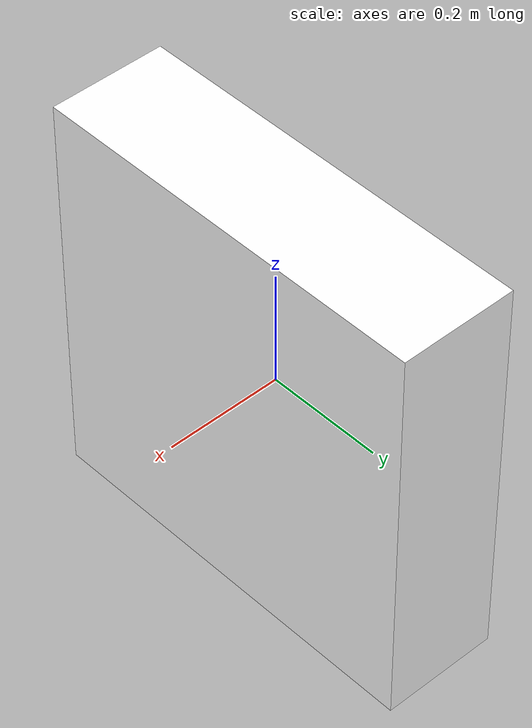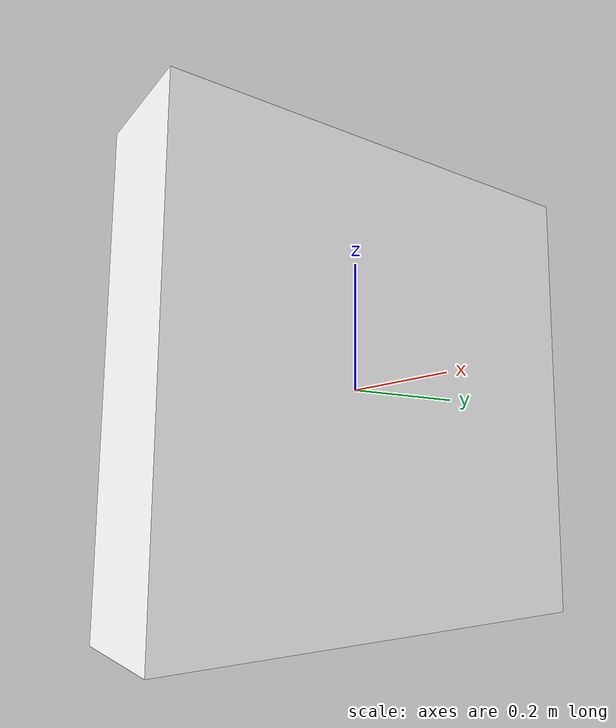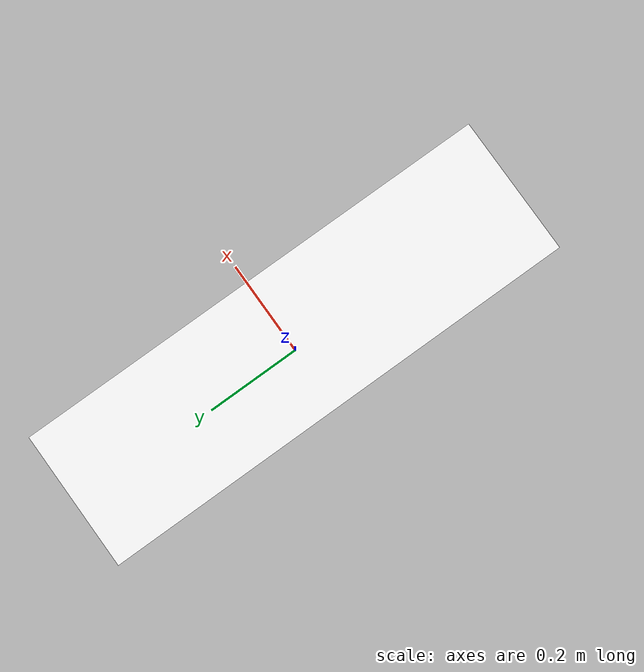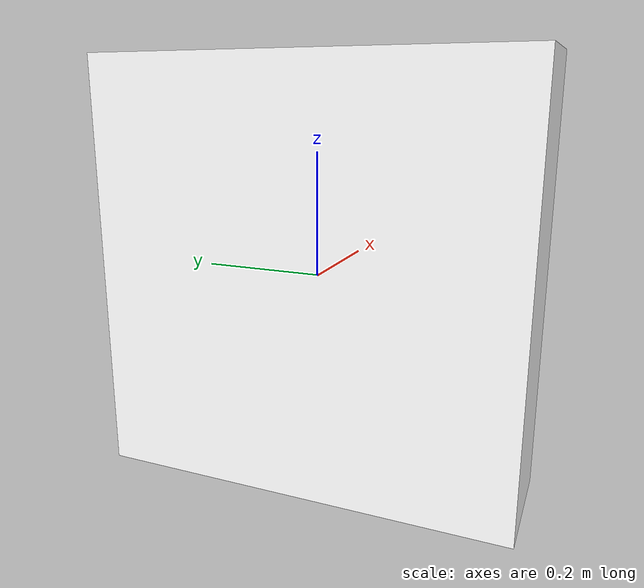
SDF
<?xml version='1.0'?>
<sdf version='1.5'>
  <model name='aruco_marker1'>
    <link name='marker'>
      <!-- 90 degree rotation around Z-axis (yaw) -->
      <pose frame=''>0 0 0 0 0 1.5708</pose>
      <visual name='visual'>
        <geometry>
          <box>
            <size>0.7 0.2 0.7</size>
          </box>
        </geometry>
        <material>
          <script>
            <uri>model://aruco_marker1/materials/scripts</uri>
            <uri>model://aruco_marker1/materials/textures</uri>
            <name>arucomarker1/Marker</name>
          </script>
          <ambient>1 1 1 1</ambient>
          <diffuse>1 1 1 1</diffuse>
          <specular>0 0 0 1</specular>
          <emissive>1 1 1 0</emissive>
          <shader type='vertex'>
            <normal_map>__default__</normal_map>
          </shader>
        </material>
        <pose frame=''>0 0 0 0 0 0</pose>
        <cast_shadows>1</cast_shadows>
        <transparency>0</transparency>
      </visual>
      <collision name='collision'>
        <laser_retro>0</laser_retro>
        <max_contacts>10</max_contacts>
        <pose frame=''>0 0 0 0 0 0</pose>
        <geometry>
          <box>
            <size>1 1 1</size>
          </box>
        </geometry>
      </collision>
    </link>
  </model>
</sdf>
